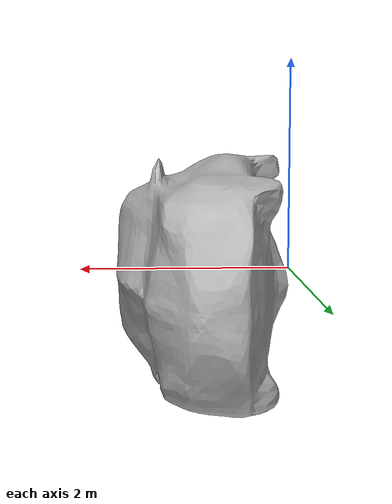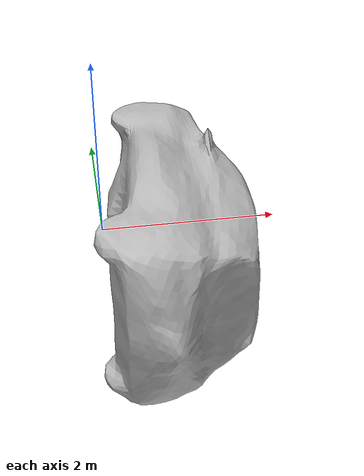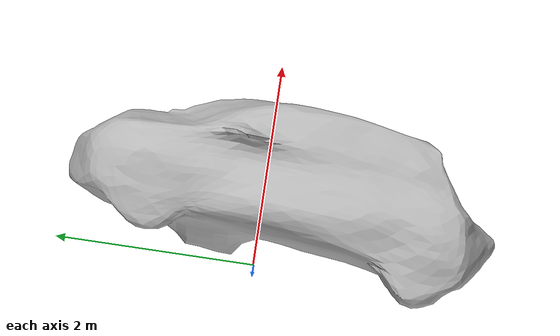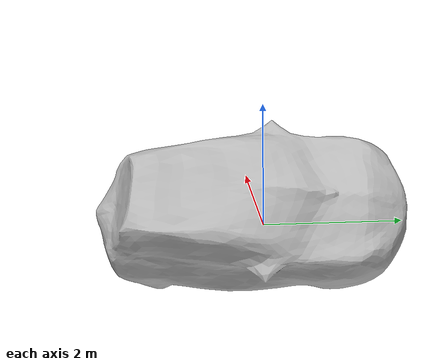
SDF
<?xml version='1.0'?>
<sdf version='1.7'>
  <model name='klu_car'>
    <model name='car'>
      <static>1</static>
      <link name='link'>
        <collision name='collision'>
          <geometry>
            <mesh>
              <scale>2 2 2</scale>
              <uri>model://car/meshes/car.obj</uri>
              <rpy>0 0 0</rpy>
            </mesh>
          </geometry>
          <max_contacts>10</max_contacts>
          <surface>
            <contact>
              <ode/>
            </contact>
            <bounce/>
            <friction>
              <torsional>
                <ode/>
              </torsional>
              <ode/>
            </friction>
          </surface>
        </collision>
        <visual name='visual'>
          <geometry>
            <mesh>
              <scale>2 2 2</scale>
              <uri>model://car/meshes/car.obj</uri>
            </mesh>
          </geometry>
        </visual>
        <self_collide>0</self_collide>
        <enable_wind>0</enable_wind>
        <kinematic>0</kinematic>
      </link>
      <pose>-1e-05 4e-06 0 1.5658 0.041265 1.45016</pose>
      <allow_auto_disable>0</allow_auto_disable>
      <selfCollide>1</selfCollide>
    </model>
    <static>0</static>
    <allow_auto_disable>1</allow_auto_disable>
  </model>
</sdf>
